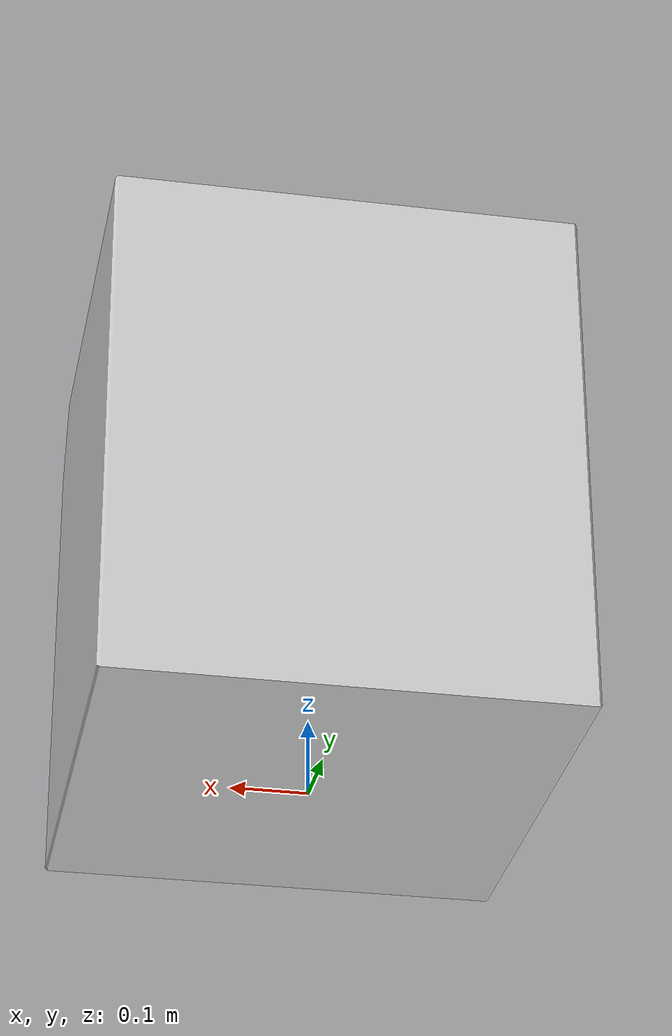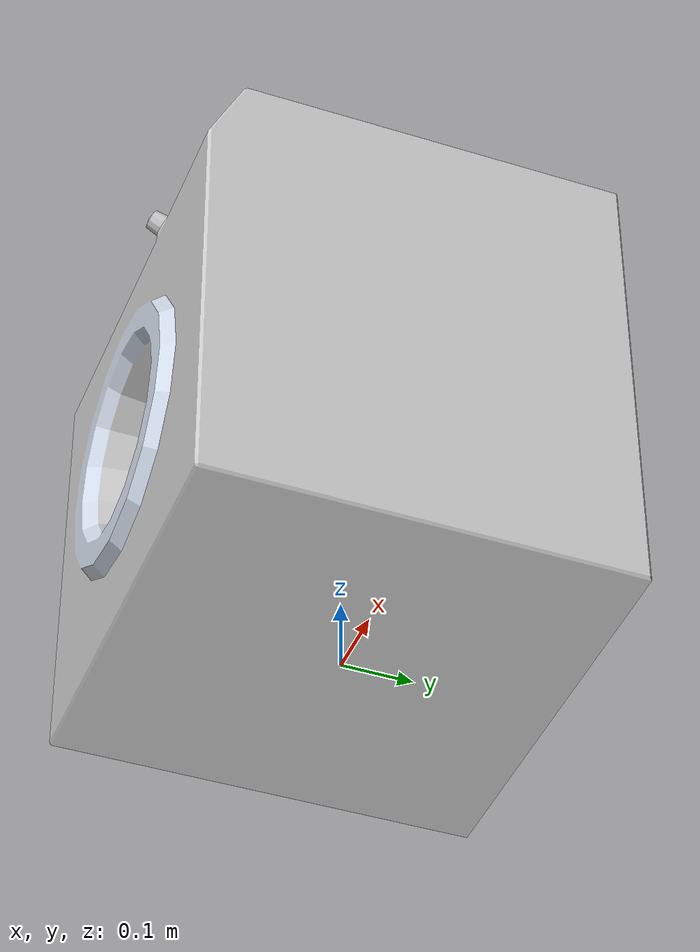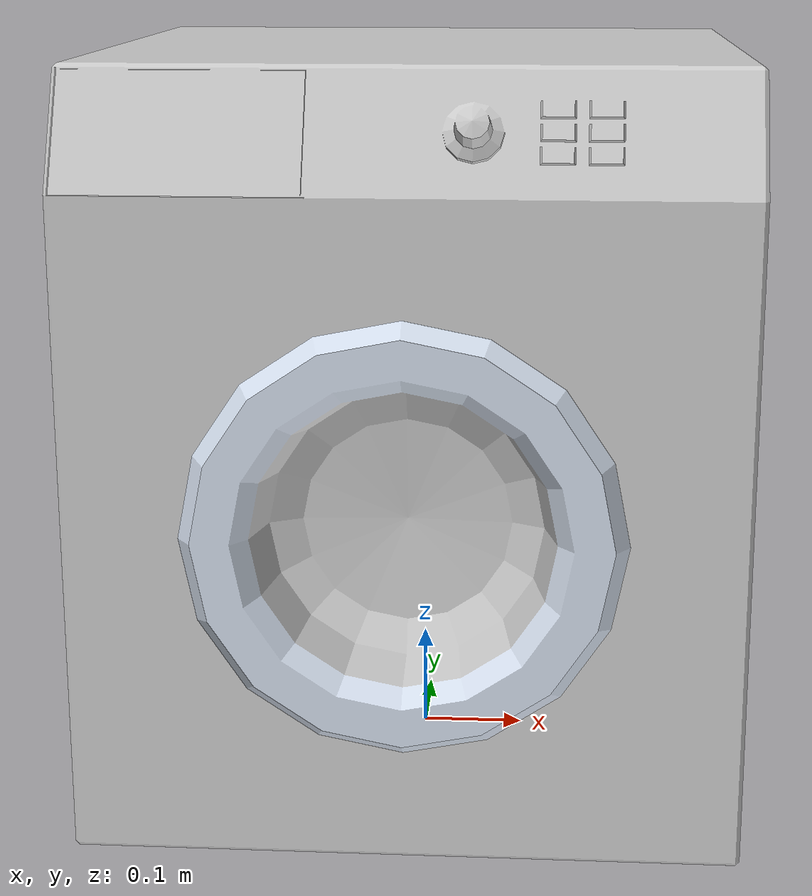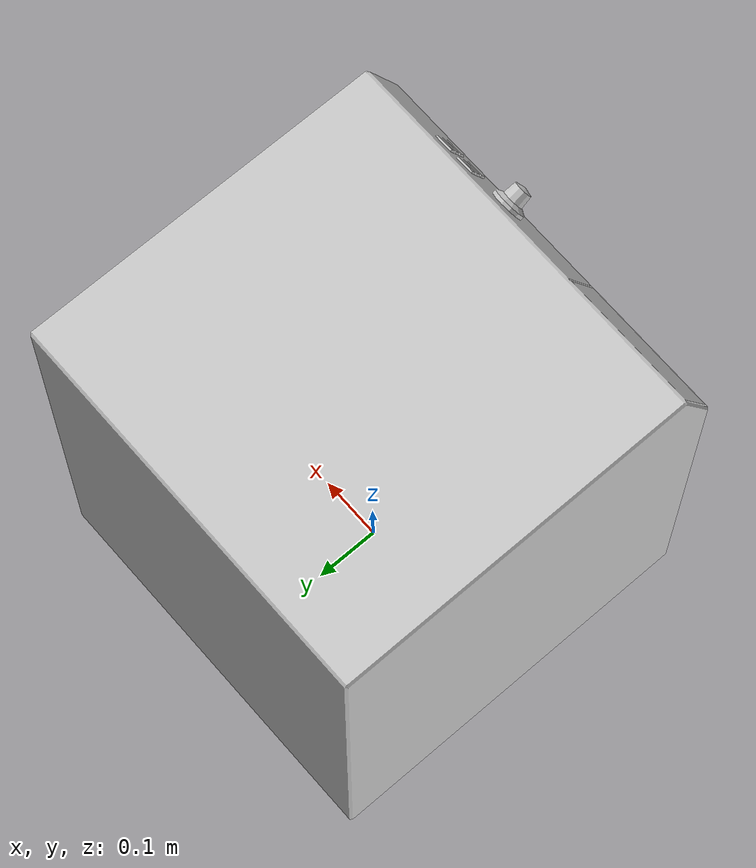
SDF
<?xml version='1.0'?>
<sdf version="1.4">
	<model name="washing_machine">
		<static>1</static>
		<link name="link">
			<visual name="mesh">
				<geometry>
					<mesh>
						<uri>model://meshes/washing_machine.dae</uri>
					</mesh>
				</geometry>
			</visual>
			<collision name="collider">
				<pose>0 0 0.35 0 0 0</pose>
				<geometry>
					<box>
						<size>0.6 0.618 0.7</size>
					</box>
				</geometry>
			</collision>
		</link>
	</model>
</sdf>
